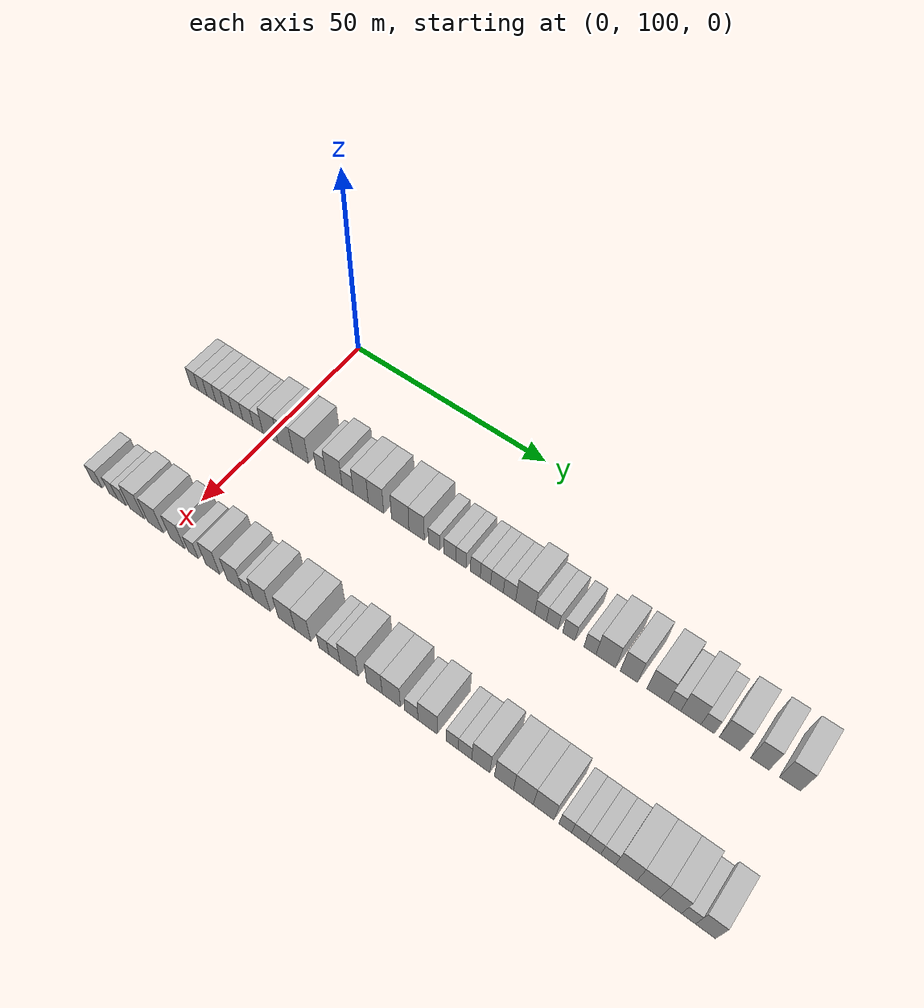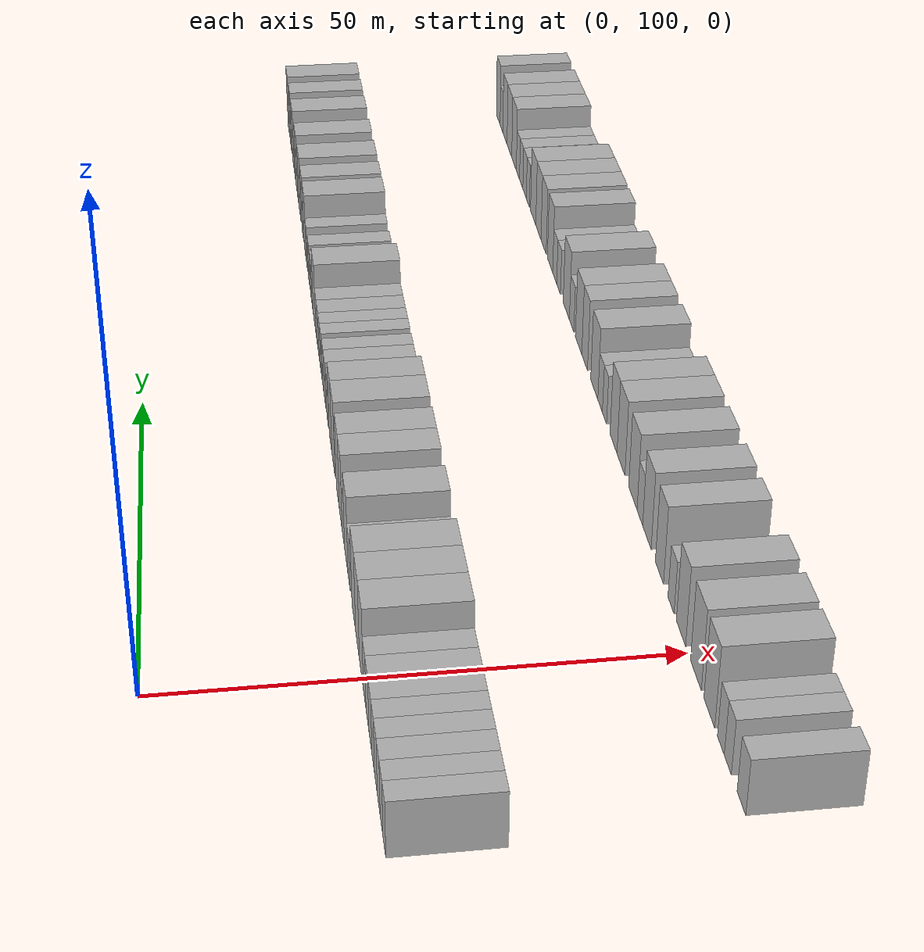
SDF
<sdf version="1.6">
 <world name="default">
  <model name="building_69">
   <static>1</static>
   <pose>25.0000 78.6879 0 0.000000 0.000000 0.000000</pose>
   <link name="link">
    <pose>0 0 3.00 0 0 0</pose>
    <collision name="collision"><geometry><box><size>10.0000 2.4779 6.0000</size></box></geometry></collision>
    <visual name="visual">
     <cast_shadows>0</cast_shadows>
     <geometry><box><size>10.0000 2.4779 6.0000</size></box></geometry>
     <material>
      <script>
       <uri>model://HANNAS_wall/materials/scripts</uri>
       <uri>model://HANNAS_wall/materials/textures</uri>
       <name>vrc/HANNAS_wall</name>
      </script>
     </material>
    </visual>
   </link>
  </model>
  <model name="building_70">
   <static>1</static>
   <pose>25.0000 81.1449 0 0.000000 0.000000 0.000000</pose>
   <link name="link">
    <pose>0 0 3.00 0 0 0</pose>
    <collision name="collision"><geometry><box><size>10.0000 2.4361 6.0000</size></box></geometry></collision>
    <visual name="visual">
     <cast_shadows>0</cast_shadows>
     <geometry><box><size>10.0000 2.4361 6.0000</size></box></geometry>
     <material>
      <script>
       <uri>model://HANNAS_wall/materials/scripts</uri>
       <uri>model://HANNAS_wall/materials/textures</uri>
       <name>vrc/HANNAS_wall</name>
      </script>
     </material>
    </visual>
   </link>
  </model>
  <model name="building_71">
   <static>1</static>
   <pose>25.0000 83.6868 0 0.000000 0.000000 0.000000</pose>
   <link name="link">
    <pose>0 0 3.00 0 0 0</pose>
    <collision name="collision"><geometry><box><size>10.0000 2.6477 6.0000</size></box></geometry></collision>
    <visual name="visual">
     <cast_shadows>0</cast_shadows>
     <geometry><box><size>10.0000 2.6477 6.0000</size></box></geometry>
     <material>
      <script>
       <uri>model://HANNAS_wall/materials/scripts</uri>
       <uri>model://HANNAS_wall/materials/textures</uri>
       <name>vrc/HANNAS_wall</name>
      </script>
     </material>
    </visual>
   </link>
  </model>
  <model name="building_72">
   <static>1</static>
   <pose>25.0000 86.2719 0 0.000000 0.000000 0.000000</pose>
   <link name="link">
    <pose>0 0 3.00 0 0 0</pose>
    <collision name="collision"><geometry><box><size>10.0000 2.5225 6.0000</size></box></geometry></collision>
    <visual name="visual">
     <cast_shadows>0</cast_shadows>
     <geometry><box><size>10.0000 2.5225 6.0000</size></box></geometry>
     <material>
      <script>
       <uri>model://HANNAS_wall/materials/scripts</uri>
       <uri>model://HANNAS_wall/materials/textures</uri>
       <name>vrc/HANNAS_wall</name>
      </script>
     </material>
    </visual>
   </link>
  </model>
  <model name="building_73">
   <static>1</static>
   <pose>25.0000 88.7493 0 0.000000 0.000000 0.000000</pose>
   <link name="link">
    <pose>0 0 3.00 0 0 0</pose>
    <collision name="collision"><geometry><box><size>10.0000 2.4323 6.0000</size></box></geometry></collision>
    <visual name="visual">
     <cast_shadows>0</cast_shadows>
     <geometry><box><size>10.0000 2.4323 6.0000</size></box></geometry>
     <material>
      <script>
       <uri>model://HANNAS_wall/materials/scripts</uri>
       <uri>model://HANNAS_wall/materials/textures</uri>
       <name>vrc/HANNAS_wall</name>
      </script>
     </material>
    </visual>
   </link>
  </model>
  <model name="building_74">
   <static>1</static>
   <pose>25.0000 91.3941 0 0.000000 0.000000 0.000000</pose>
   <link name="link">
    <pose>0 0 3.00 0 0 0</pose>
    <collision name="collision"><geometry><box><size>10.0000 2.8573 6.0000</size></box></geometry></collision>
    <visual name="visual">
     <cast_shadows>0</cast_shadows>
     <geometry><box><size>10.0000 2.8573 6.0000</size></box></geometry>
     <material>
      <script>
       <uri>model://HANNAS_wall/materials/scripts</uri>
       <uri>model://HANNAS_wall/materials/textures</uri>
       <name>vrc/HANNAS_wall</name>
      </script>
     </material>
    </visual>
   </link>
  </model>
  <model name="building_75">
   <static>1</static>
   <pose>25.0000 94.3210 0 0.000000 0.000000 0.000000</pose>
   <link name="link">
    <pose>0 0 3.00 0 0 0</pose>
    <collision name="collision"><geometry><box><size>10.0000 2.9966 6.0000</size></box></geometry></collision>
    <visual name="visual">
     <cast_shadows>0</cast_shadows>
     <geometry><box><size>10.0000 2.9966 6.0000</size></box></geometry>
     <material>
      <script>
       <uri>model://HANNAS_wall/materials/scripts</uri>
       <uri>model://HANNAS_wall/materials/textures</uri>
       <name>vrc/HANNAS_wall</name>
      </script>
     </material>
    </visual>
   </link>
  </model>
  <model name="building_76">
   <static>1</static>
   <pose>25.0000 97.1688 0 0.000000 0.000000 0.000000</pose>
   <link name="link">
    <pose>0 0 3.00 0 0 0</pose>
    <collision name="collision"><geometry><box><size>10.0000 2.6990 6.0000</size></box></geometry></collision>
    <visual name="visual">
     <cast_shadows>0</cast_shadows>
     <geometry><box><size>10.0000 2.6990 6.0000</size></box></geometry>
     <material>
      <script>
       <uri>model://HANNAS_wall/materials/scripts</uri>
       <uri>model://HANNAS_wall/materials/textures</uri>
       <name>vrc/HANNAS_wall</name>
      </script>
     </material>
    </visual>
   </link>
  </model>
  <model name="building_77">
   <static>1</static>
   <pose>25.0000 100.6494 0 0.000000 0.000000 0.000000</pose>
   <link name="link">
    <pose>0 0 4.50 0 0 0</pose>
    <collision name="collision"><geometry><box><size>10.0000 4.2621 9.0000</size></box></geometry></collision>
    <visual name="visual">
     <cast_shadows>0</cast_shadows>
     <geometry><box><size>10.0000 4.2621 9.0000</size></box></geometry>
     <material>
      <script>
       <uri>model://HANNAS_wall/materials/scripts</uri>
       <uri>model://HANNAS_wall/materials/textures</uri>
       <name>vrc/HANNAS_wall</name>
      </script>
     </material>
    </visual>
   </link>
  </model>
  <model name="building_78">
   <static>1</static>
   <pose>25.0000 104.8678 0 0.000000 0.000000 0.000000</pose>
   <link name="link">
    <pose>0 0 4.50 0 0 0</pose>
    <collision name="collision"><geometry><box><size>10.0000 4.1746 9.0000</size></box></geometry></collision>
    <visual name="visual">
     <cast_shadows>0</cast_shadows>
     <geometry><box><size>10.0000 4.1746 9.0000</size></box></geometry>
     <material>
      <script>
       <uri>model://HANNAS_wall/materials/scripts</uri>
       <uri>model://HANNAS_wall/materials/textures</uri>
       <name>vrc/HANNAS_wall</name>
      </script>
     </material>
    </visual>
   </link>
  </model>
  <model name="building_79">
   <static>1</static>
   <pose>25.0000 109.0626 0 0.000000 0.000000 0.000000</pose>
   <link name="link">
    <pose>0 0 4.50 0 0 0</pose>
    <collision name="collision"><geometry><box><size>10.0000 4.2151 9.0000</size></box></geometry></collision>
    <visual name="visual">
     <cast_shadows>0</cast_shadows>
     <geometry><box><size>10.0000 4.2151 9.0000</size></box></geometry>
     <material>
      <script>
       <uri>model://HANNAS_wall/materials/scripts</uri>
       <uri>model://HANNAS_wall/materials/textures</uri>
       <name>vrc/HANNAS_wall</name>
      </script>
     </material>
    </visual>
   </link>
  </model>
  <model name="building_80">
   <static>1</static>
   <pose>25.0000 114.5072 0 0.000000 0.000000 0.000000</pose>
   <link name="link">
    <pose>0 0 3.00 0 0 0</pose>
    <collision name="collision"><geometry><box><size>10.0000 2.6740 6.0000</size></box></geometry></collision>
    <visual name="visual">
     <cast_shadows>0</cast_shadows>
     <geometry><box><size>10.0000 2.6740 6.0000</size></box></geometry>
     <material>
      <script>
       <uri>model://HANNAS_wall/materials/scripts</uri>
       <uri>model://HANNAS_wall/materials/textures</uri>
       <name>vrc/HANNAS_wall</name>
      </script>
     </material>
    </visual>
   </link>
  </model>
  <model name="building_81">
   <static>1</static>
   <pose>25.0000 118.0211 0 0.000000 0.000000 0.000000</pose>
   <link name="link">
    <pose>0 0 4.50 0 0 0</pose>
    <collision name="collision"><geometry><box><size>10.0000 4.3538 9.0000</size></box></geometry></collision>
    <visual name="visual">
     <cast_shadows>0</cast_shadows>
     <geometry><box><size>10.0000 4.3538 9.0000</size></box></geometry>
     <material>
      <script>
       <uri>model://HANNAS_wall/materials/scripts</uri>
       <uri>model://HANNAS_wall/materials/textures</uri>
       <name>vrc/HANNAS_wall</name>
      </script>
     </material>
    </visual>
   </link>
  </model>
  <model name="building_82">
   <static>1</static>
   <pose>25.0000 121.6904 0 0.000000 0.000000 0.000000</pose>
   <link name="link">
    <pose>0 0 3.00 0 0 0</pose>
    <collision name="collision"><geometry><box><size>10.0000 2.9847 6.0000</size></box></geometry></collision>
    <visual name="visual">
     <cast_shadows>0</cast_shadows>
     <geometry><box><size>10.0000 2.9847 6.0000</size></box></geometry>
     <material>
      <script>
       <uri>model://HANNAS_wall/materials/scripts</uri>
       <uri>model://HANNAS_wall/materials/textures</uri>
       <name>vrc/HANNAS_wall</name>
      </script>
     </material>
    </visual>
   </link>
  </model>
  <model name="building_83">
   <static>1</static>
   <pose>25.0000 125.1271 0 0.000000 0.000000 0.000000</pose>
   <link name="link">
    <pose>0 0 4.50 0 0 0</pose>
    <collision name="collision"><geometry><box><size>10.0000 3.8887 9.0000</size></box></geometry></collision>
    <visual name="visual">
     <cast_shadows>0</cast_shadows>
     <geometry><box><size>10.0000 3.8887 9.0000</size></box></geometry>
     <material>
      <script>
       <uri>model://HANNAS_wall/materials/scripts</uri>
       <uri>model://HANNAS_wall/materials/textures</uri>
       <name>vrc/HANNAS_wall</name>
      </script>
     </material>
    </visual>
   </link>
  </model>
  <model name="building_84">
   <static>1</static>
   <pose>25.0000 129.0523 0 0.000000 0.000000 0.000000</pose>
   <link name="link">
    <pose>0 0 4.50 0 0 0</pose>
    <collision name="collision"><geometry><box><size>10.0000 3.9617 9.0000</size></box></geometry></collision>
    <visual name="visual">
     <cast_shadows>0</cast_shadows>
     <geometry><box><size>10.0000 3.9617 9.0000</size></box></geometry>
     <material>
      <script>
       <uri>model://HANNAS_wall/materials/scripts</uri>
       <uri>model://HANNAS_wall/materials/textures</uri>
       <name>vrc/HANNAS_wall</name>
      </script>
     </material>
    </visual>
   </link>
  </model>
  <model name="building_85">
   <static>1</static>
   <pose>25.0000 135.2453 0 0.000000 0.000000 0.000000</pose>
   <link name="link">
    <pose>0 0 4.50 0 0 0</pose>
    <collision name="collision"><geometry><box><size>10.0000 4.4245 9.0000</size></box></geometry></collision>
    <visual name="visual">
     <cast_shadows>0</cast_shadows>
     <geometry><box><size>10.0000 4.4245 9.0000</size></box></geometry>
     <material>
      <script>
       <uri>model://HANNAS_wall/materials/scripts</uri>
       <uri>model://HANNAS_wall/materials/textures</uri>
       <name>vrc/HANNAS_wall</name>
      </script>
     </material>
    </visual>
   </link>
  </model>
  <model name="building_86">
   <static>1</static>
   <pose>25.0000 139.3725 0 0.000000 0.000000 0.000000</pose>
   <link name="link">
    <pose>0 0 4.50 0 0 0</pose>
    <collision name="collision"><geometry><box><size>10.0000 3.8299 9.0000</size></box></geometry></collision>
    <visual name="visual">
     <cast_shadows>0</cast_shadows>
     <geometry><box><size>10.0000 3.8299 9.0000</size></box></geometry>
     <material>
      <script>
       <uri>model://HANNAS_wall/materials/scripts</uri>
       <uri>model://HANNAS_wall/materials/textures</uri>
       <name>vrc/HANNAS_wall</name>
      </script>
     </material>
    </visual>
   </link>
  </model>
  <model name="building_87">
   <static>1</static>
   <pose>25.0000 143.6843 0 0.000000 0.000000 0.000000</pose>
   <link name="link">
    <pose>0 0 3.00 0 0 0</pose>
    <collision name="collision"><geometry><box><size>10.0000 2.7937 6.0000</size></box></geometry></collision>
    <visual name="visual">
     <cast_shadows>0</cast_shadows>
     <geometry><box><size>10.0000 2.7937 6.0000</size></box></geometry>
     <material>
      <script>
       <uri>model://HANNAS_wall/materials/scripts</uri>
       <uri>model://HANNAS_wall/materials/textures</uri>
       <name>vrc/HANNAS_wall</name>
      </script>
     </material>
    </visual>
   </link>
  </model>
  <model name="building_88">
   <static>1</static>
   <pose>25.0000 147.5683 0 0.000000 0.000000 0.000000</pose>
   <link name="link">
    <pose>0 0 3.00 0 0 0</pose>
    <collision name="collision"><geometry><box><size>10.0000 2.9743 6.0000</size></box></geometry></collision>
    <visual name="visual">
     <cast_shadows>0</cast_shadows>
     <geometry><box><size>10.0000 2.9743 6.0000</size></box></geometry>
     <material>
      <script>
       <uri>model://HANNAS_wall/materials/scripts</uri>
       <uri>model://HANNAS_wall/materials/textures</uri>
       <name>vrc/HANNAS_wall</name>
      </script>
     </material>
    </visual>
   </link>
  </model>
  <model name="building_89">
   <static>1</static>
   <pose>25.0000 150.2918 0 0.000000 0.000000 0.000000</pose>
   <link name="link">
    <pose>0 0 3.00 0 0 0</pose>
    <collision name="collision"><geometry><box><size>10.0000 2.4726 6.0000</size></box></geometry></collision>
    <visual name="visual">
     <cast_shadows>0</cast_shadows>
     <geometry><box><size>10.0000 2.4726 6.0000</size></box></geometry>
     <material>
      <script>
       <uri>model://HANNAS_wall/materials/scripts</uri>
       <uri>model://HANNAS_wall/materials/textures</uri>
       <name>vrc/HANNAS_wall</name>
      </script>
     </material>
    </visual>
   </link>
  </model>
  <model name="building_90">
   <static>1</static>
   <pose>25.0000 153.7331 0 0.000000 0.000000 0.000000</pose>
   <link name="link">
    <pose>0 0 3.00 0 0 0</pose>
    <collision name="collision"><geometry><box><size>10.0000 2.4100 6.0000</size></box></geometry></collision>
    <visual name="visual">
     <cast_shadows>0</cast_shadows>
     <geometry><box><size>10.0000 2.4100 6.0000</size></box></geometry>
     <material>
      <script>
       <uri>model://HANNAS_wall/materials/scripts</uri>
       <uri>model://HANNAS_wall/materials/textures</uri>
       <name>vrc/HANNAS_wall</name>
      </script>
     </material>
    </visual>
   </link>
  </model>
  <model name="building_91">
   <static>1</static>
   <pose>25.0000 156.1732 0 0.000000 0.000000 0.000000</pose>
   <link name="link">
    <pose>0 0 3.00 0 0 0</pose>
    <collision name="collision"><geometry><box><size>10.0000 2.4704 6.0000</size></box></geometry></collision>
    <visual name="visual">
     <cast_shadows>0</cast_shadows>
     <geometry><box><size>10.0000 2.4704 6.0000</size></box></geometry>
     <material>
      <script>
       <uri>model://HANNAS_wall/materials/scripts</uri>
       <uri>model://HANNAS_wall/materials/textures</uri>
       <name>vrc/HANNAS_wall</name>
      </script>
     </material>
    </visual>
   </link>
  </model>
  <model name="building_92">
   <static>1</static>
   <pose>25.0000 158.9029 0 0.000000 0.000000 0.000000</pose>
   <link name="link">
    <pose>0 0 3.00 0 0 0</pose>
    <collision name="collision"><geometry><box><size>10.0000 2.9889 6.0000</size></box></geometry></collision>
    <visual name="visual">
     <cast_shadows>0</cast_shadows>
     <geometry><box><size>10.0000 2.9889 6.0000</size></box></geometry>
     <material>
      <script>
       <uri>model://HANNAS_wall/materials/scripts</uri>
       <uri>model://HANNAS_wall/materials/textures</uri>
       <name>vrc/HANNAS_wall</name>
      </script>
     </material>
    </visual>
   </link>
  </model>
  <model name="building_93">
   <static>1</static>
   <pose>25.0000 161.8465 0 0.000000 0.000000 0.000000</pose>
   <link name="link">
    <pose>0 0 3.00 0 0 0</pose>
    <collision name="collision"><geometry><box><size>10.0000 2.8983 6.0000</size></box></geometry></collision>
    <visual name="visual">
     <cast_shadows>0</cast_shadows>
     <geometry><box><size>10.0000 2.8983 6.0000</size></box></geometry>
     <material>
      <script>
       <uri>model://HANNAS_wall/materials/scripts</uri>
       <uri>model://HANNAS_wall/materials/textures</uri>
       <name>vrc/HANNAS_wall</name>
      </script>
     </material>
    </visual>
   </link>
  </model>
  <model name="building_94">
   <static>1</static>
   <pose>25.0000 165.4857 0 0.000000 0.000000 0.000000</pose>
   <link name="link">
    <pose>0 0 4.50 0 0 0</pose>
    <collision name="collision"><geometry><box><size>10.0000 4.3802 9.0000</size></box></geometry></collision>
    <visual name="visual">
     <cast_shadows>0</cast_shadows>
     <geometry><box><size>10.0000 4.3802 9.0000</size></box></geometry>
     <material>
      <script>
       <uri>model://HANNAS_wall/materials/scripts</uri>
       <uri>model://HANNAS_wall/materials/textures</uri>
       <name>vrc/HANNAS_wall</name>
      </script>
     </material>
    </visual>
   </link>
  </model>
  <model name="building_95">
   <static>1</static>
   <pose>25.0000 169.0139 0 0.000000 0.000000 0.000000</pose>
   <link name="link">
    <pose>0 0 3.00 0 0 0</pose>
    <collision name="collision"><geometry><box><size>10.0000 2.6763 6.0000</size></box></geometry></collision>
    <visual name="visual">
     <cast_shadows>0</cast_shadows>
     <geometry><box><size>10.0000 2.6763 6.0000</size></box></geometry>
     <material>
      <script>
       <uri>model://HANNAS_wall/materials/scripts</uri>
       <uri>model://HANNAS_wall/materials/textures</uri>
       <name>vrc/HANNAS_wall</name>
      </script>
     </material>
    </visual>
   </link>
  </model>
  <model name="building_96">
   <static>1</static>
   <pose>25.0000 171.7086 0 0.000000 0.000000 0.000000</pose>
   <link name="link">
    <pose>0 0 3.00 0 0 0</pose>
    <collision name="collision"><geometry><box><size>10.0000 2.7130 6.0000</size></box></geometry></collision>
    <visual name="visual">
     <cast_shadows>0</cast_shadows>
     <geometry><box><size>10.0000 2.7130 6.0000</size></box></geometry>
     <material>
      <script>
       <uri>model://HANNAS_wall/materials/scripts</uri>
       <uri>model://HANNAS_wall/materials/textures</uri>
       <name>vrc/HANNAS_wall</name>
      </script>
     </material>
    </visual>
   </link>
  </model>
  <model name="building_97">
   <static>1</static>
   <pose>25.0000 175.4505 0 0.000000 0.000000 0.000000</pose>
   <link name="link">
    <pose>0 0 3.00 0 0 0</pose>
    <collision name="collision"><geometry><box><size>10.0000 2.7708 6.0000</size></box></geometry></collision>
    <visual name="visual">
     <cast_shadows>0</cast_shadows>
     <geometry><box><size>10.0000 2.7708 6.0000</size></box></geometry>
     <material>
      <script>
       <uri>model://HANNAS_wall/materials/scripts</uri>
       <uri>model://HANNAS_wall/materials/textures</uri>
       <name>vrc/HANNAS_wall</name>
      </script>
     </material>
    </visual>
   </link>
  </model>
  <model name="building_98">
   <static>1</static>
   <pose>25.0000 180.1701 0 0.000000 0.000000 0.000000</pose>
   <link name="link">
    <pose>0 0 3.00 0 0 0</pose>
    <collision name="collision"><geometry><box><size>10.0000 2.6682 6.0000</size></box></geometry></collision>
    <visual name="visual">
     <cast_shadows>0</cast_shadows>
     <geometry><box><size>10.0000 2.6682 6.0000</size></box></geometry>
     <material>
      <script>
       <uri>model://HANNAS_wall/materials/scripts</uri>
       <uri>model://HANNAS_wall/materials/textures</uri>
       <name>vrc/HANNAS_wall</name>
      </script>
     </material>
    </visual>
   </link>
  </model>
  <model name="building_99">
   <static>1</static>
   <pose>25.0000 183.6478 0 0.000000 0.000000 0.000000</pose>
   <link name="link">
    <pose>0 0 4.50 0 0 0</pose>
    <collision name="collision"><geometry><box><size>10.0000 4.2873 9.0000</size></box></geometry></collision>
    <visual name="visual">
     <cast_shadows>0</cast_shadows>
     <geometry><box><size>10.0000 4.2873 9.0000</size></box></geometry>
     <material>
      <script>
       <uri>model://HANNAS_wall/materials/scripts</uri>
       <uri>model://HANNAS_wall/materials/textures</uri>
       <name>vrc/HANNAS_wall</name>
      </script>
     </material>
    </visual>
   </link>
  </model>
  <model name="building_100">
   <static>1</static>
   <pose>25.0000 188.6490 0 0.000000 0.000000 0.000000</pose>
   <link name="link">
    <pose>0 0 4.50 0 0 0</pose>
    <collision name="collision"><geometry><box><size>10.0000 3.7152 9.0000</size></box></geometry></collision>
    <visual name="visual">
     <cast_shadows>0</cast_shadows>
     <geometry><box><size>10.0000 3.7152 9.0000</size></box></geometry>
     <material>
      <script>
       <uri>model://HANNAS_wall/materials/scripts</uri>
       <uri>model://HANNAS_wall/materials/textures</uri>
       <name>vrc/HANNAS_wall</name>
      </script>
     </material>
    </visual>
   </link>
  </model>
  <model name="building_101">
   <static>1</static>
   <pose>25.0000 194.7342 0 0.000000 0.000000 0.000000</pose>
   <link name="link">
    <pose>0 0 4.50 0 0 0</pose>
    <collision name="collision"><geometry><box><size>10.0000 4.4552 9.0000</size></box></geometry></collision>
    <visual name="visual">
     <cast_shadows>0</cast_shadows>
     <geometry><box><size>10.0000 4.4552 9.0000</size></box></geometry>
     <material>
      <script>
       <uri>model://HANNAS_wall/materials/scripts</uri>
       <uri>model://HANNAS_wall/materials/textures</uri>
       <name>vrc/HANNAS_wall</name>
      </script>
     </material>
    </visual>
   </link>
  </model>
  <model name="building_102">
   <static>1</static>
   <pose>25.0000 198.2845 0 0.000000 0.000000 0.000000</pose>
   <link name="link">
    <pose>0 0 3.00 0 0 0</pose>
    <collision name="collision"><geometry><box><size>10.0000 2.6454 6.0000</size></box></geometry></collision>
    <visual name="visual">
     <cast_shadows>0</cast_shadows>
     <geometry><box><size>10.0000 2.6454 6.0000</size></box></geometry>
     <material>
      <script>
       <uri>model://HANNAS_wall/materials/scripts</uri>
       <uri>model://HANNAS_wall/materials/textures</uri>
       <name>vrc/HANNAS_wall</name>
      </script>
     </material>
    </visual>
   </link>
  </model>
  <model name="building_103">
   <static>1</static>
   <pose>25.0000 201.6958 0 0.000000 0.000000 0.000000</pose>
   <link name="link">
    <pose>0 0 4.50 0 0 0</pose>
    <collision name="collision"><geometry><box><size>10.0000 4.1772 9.0000</size></box></geometry></collision>
    <visual name="visual">
     <cast_shadows>0</cast_shadows>
     <geometry><box><size>10.0000 4.1772 9.0000</size></box></geometry>
     <material>
      <script>
       <uri>model://HANNAS_wall/materials/scripts</uri>
       <uri>model://HANNAS_wall/materials/textures</uri>
       <name>vrc/HANNAS_wall</name>
      </script>
     </material>
    </visual>
   </link>
  </model>
  <model name="building_104">
   <static>1</static>
   <pose>25.0000 205.1505 0 0.000000 0.000000 0.000000</pose>
   <link name="link">
    <pose>0 0 3.00 0 0 0</pose>
    <collision name="collision"><geometry><box><size>10.0000 2.7322 6.0000</size></box></geometry></collision>
    <visual name="visual">
     <cast_shadows>0</cast_shadows>
     <geometry><box><size>10.0000 2.7322 6.0000</size></box></geometry>
     <material>
      <script>
       <uri>model://HANNAS_wall/materials/scripts</uri>
       <uri>model://HANNAS_wall/materials/textures</uri>
       <name>vrc/HANNAS_wall</name>
      </script>
     </material>
    </visual>
   </link>
  </model>
  <model name="building_105">
   <static>1</static>
   <pose>25.0000 209.6522 0 0.000000 0.000000 0.000000</pose>
   <link name="link">
    <pose>0 0 4.50 0 0 0</pose>
    <collision name="collision"><geometry><box><size>10.0000 4.2711 9.0000</size></box></geometry></collision>
    <visual name="visual">
     <cast_shadows>0</cast_shadows>
     <geometry><box><size>10.0000 4.2711 9.0000</size></box></geometry>
     <material>
      <script>
       <uri>model://HANNAS_wall/materials/scripts</uri>
       <uri>model://HANNAS_wall/materials/textures</uri>
       <name>vrc/HANNAS_wall</name>
      </script>
     </material>
    </visual>
   </link>
  </model>
  <model name="building_106">
   <static>1</static>
   <pose>25.0000 215.6043 0 0.000000 0.000000 0.000000</pose>
   <link name="link">
    <pose>0 0 4.50 0 0 0</pose>
    <collision name="collision"><geometry><box><size>10.0000 3.6331 9.0000</size></box></geometry></collision>
    <visual name="visual">
     <cast_shadows>0</cast_shadows>
     <geometry><box><size>10.0000 3.6331 9.0000</size></box></geometry>
     <material>
      <script>
       <uri>model://HANNAS_wall/materials/scripts</uri>
       <uri>model://HANNAS_wall/materials/textures</uri>
       <name>vrc/HANNAS_wall</name>
      </script>
     </material>
    </visual>
   </link>
  </model>
  <model name="building_107">
   <static>1</static>
   <pose>25.0000 221.4676 0 0.000000 0.000000 0.000000</pose>
   <link name="link">
    <pose>0 0 4.50 0 0 0</pose>
    <collision name="collision"><geometry><box><size>10.0000 4.0934 9.0000</size></box></geometry></collision>
    <visual name="visual">
     <cast_shadows>0</cast_shadows>
     <geometry><box><size>10.0000 4.0934 9.0000</size></box></geometry>
     <material>
      <script>
       <uri>model://HANNAS_wall/materials/scripts</uri>
       <uri>model://HANNAS_wall/materials/textures</uri>
       <name>vrc/HANNAS_wall</name>
      </script>
     </material>
    </visual>
   </link>
  </model>
  <model name="building_186">
   <static>1</static>
   <pose>55.0000 80.1616 0 0.000000 0.000000 0.000000</pose>
   <link name="link">
    <pose>0 0 3.00 0 0 0</pose>
    <collision name="collision"><geometry><box><size>10.0000 2.9261 6.0000</size></box></geometry></collision>
    <visual name="visual">
     <cast_shadows>0</cast_shadows>
     <geometry><box><size>10.0000 2.9261 6.0000</size></box></geometry>
     <material>
      <script>
       <uri>model://HANNAS_wall/materials/scripts</uri>
       <uri>model://HANNAS_wall/materials/textures</uri>
       <name>vrc/HANNAS_wall</name>
      </script>
     </material>
    </visual>
   </link>
  </model>
  <model name="building_187">
   <static>1</static>
   <pose>55.0000 84.8802 0 0.000000 0.000000 0.000000</pose>
   <link name="link">
    <pose>0 0 3.00 0 0 0</pose>
    <collision name="collision"><geometry><box><size>10.0000 2.5111 6.0000</size></box></geometry></collision>
    <visual name="visual">
     <cast_shadows>0</cast_shadows>
     <geometry><box><size>10.0000 2.5111 6.0000</size></box></geometry>
     <material>
      <script>
       <uri>model://HANNAS_wall/materials/scripts</uri>
       <uri>model://HANNAS_wall/materials/textures</uri>
       <name>vrc/HANNAS_wall</name>
      </script>
     </material>
    </visual>
   </link>
  </model>
  <model name="building_188">
   <static>1</static>
   <pose>55.0000 87.3745 0 0.000000 0.000000 0.000000</pose>
   <link name="link">
    <pose>0 0 3.00 0 0 0</pose>
    <collision name="collision"><geometry><box><size>10.0000 2.4774 6.0000</size></box></geometry></collision>
    <visual name="visual">
     <cast_shadows>0</cast_shadows>
     <geometry><box><size>10.0000 2.4774 6.0000</size></box></geometry>
     <material>
      <script>
       <uri>model://HANNAS_wall/materials/scripts</uri>
       <uri>model://HANNAS_wall/materials/textures</uri>
       <name>vrc/HANNAS_wall</name>
      </script>
     </material>
    </visual>
   </link>
  </model>
  <model name="building_189">
   <static>1</static>
   <pose>55.0000 91.6677 0 0.000000 0.000000 0.000000</pose>
   <link name="link">
    <pose>0 0 4.50 0 0 0</pose>
    <collision name="collision"><geometry><box><size>10.0000 4.1089 9.0000</size></box></geometry></collision>
    <visual name="visual">
     <cast_shadows>0</cast_shadows>
     <geometry><box><size>10.0000 4.1089 9.0000</size></box></geometry>
     <material>
      <script>
       <uri>model://HANNAS_wall/materials/scripts</uri>
       <uri>model://HANNAS_wall/materials/textures</uri>
       <name>vrc/HANNAS_wall</name>
      </script>
     </material>
    </visual>
   </link>
  </model>
  <model name="building_190">
   <static>1</static>
   <pose>55.0000 96.8815 0 0.000000 0.000000 0.000000</pose>
   <link name="link">
    <pose>0 0 4.50 0 0 0</pose>
    <collision name="collision"><geometry><box><size>10.0000 4.3187 9.0000</size></box></geometry></collision>
    <visual name="visual">
     <cast_shadows>0</cast_shadows>
     <geometry><box><size>10.0000 4.3187 9.0000</size></box></geometry>
     <material>
      <script>
       <uri>model://HANNAS_wall/materials/scripts</uri>
       <uri>model://HANNAS_wall/materials/textures</uri>
       <name>vrc/HANNAS_wall</name>
      </script>
     </material>
    </visual>
   </link>
  </model>
  <model name="building_191">
   <static>1</static>
   <pose>55.0000 102.9817 0 0.000000 0.000000 0.000000</pose>
   <link name="link">
    <pose>0 0 4.50 0 0 0</pose>
    <collision name="collision"><geometry><box><size>10.0000 3.8818 9.0000</size></box></geometry></collision>
    <visual name="visual">
     <cast_shadows>0</cast_shadows>
     <geometry><box><size>10.0000 3.8818 9.0000</size></box></geometry>
     <material>
      <script>
       <uri>model://HANNAS_wall/materials/scripts</uri>
       <uri>model://HANNAS_wall/materials/textures</uri>
       <name>vrc/HANNAS_wall</name>
      </script>
     </material>
    </visual>
   </link>
  </model>
  <model name="building_192">
   <static>1</static>
   <pose>55.0000 107.2572 0 0.000000 0.000000 0.000000</pose>
   <link name="link">
    <pose>0 0 3.00 0 0 0</pose>
    <collision name="collision"><geometry><box><size>10.0000 2.6694 6.0000</size></box></geometry></collision>
    <visual name="visual">
     <cast_shadows>0</cast_shadows>
     <geometry><box><size>10.0000 2.6694 6.0000</size></box></geometry>
     <material>
      <script>
       <uri>model://HANNAS_wall/materials/scripts</uri>
       <uri>model://HANNAS_wall/materials/textures</uri>
       <name>vrc/HANNAS_wall</name>
      </script>
     </material>
    </visual>
   </link>
  </model>
  <model name="building_193">
   <static>1</static>
   <pose>55.0000 112.4577 0 0.000000 0.000000 0.000000</pose>
   <link name="link">
    <pose>0 0 4.50 0 0 0</pose>
    <collision name="collision"><geometry><box><size>10.0000 3.7316 9.0000</size></box></geometry></collision>
    <visual name="visual">
     <cast_shadows>0</cast_shadows>
     <geometry><box><size>10.0000 3.7316 9.0000</size></box></geometry>
     <material>
      <script>
       <uri>model://HANNAS_wall/materials/scripts</uri>
       <uri>model://HANNAS_wall/materials/textures</uri>
       <name>vrc/HANNAS_wall</name>
      </script>
     </material>
    </visual>
   </link>
  </model>
  <model name="building_194">
   <static>1</static>
   <pose>55.0000 118.3690 0 0.000000 0.000000 0.000000</pose>
   <link name="link">
    <pose>0 0 4.50 0 0 0</pose>
    <collision name="collision"><geometry><box><size>10.0000 4.0909 9.0000</size></box></geometry></collision>
    <visual name="visual">
     <cast_shadows>0</cast_shadows>
     <geometry><box><size>10.0000 4.0909 9.0000</size></box></geometry>
     <material>
      <script>
       <uri>model://HANNAS_wall/materials/scripts</uri>
       <uri>model://HANNAS_wall/materials/textures</uri>
       <name>vrc/HANNAS_wall</name>
      </script>
     </material>
    </visual>
   </link>
  </model>
  <model name="building_195">
   <static>1</static>
   <pose>55.0000 121.8026 0 0.000000 0.000000 0.000000</pose>
   <link name="link">
    <pose>0 0 3.00 0 0 0</pose>
    <collision name="collision"><geometry><box><size>10.0000 2.7765 6.0000</size></box></geometry></collision>
    <visual name="visual">
     <cast_shadows>0</cast_shadows>
     <geometry><box><size>10.0000 2.7765 6.0000</size></box></geometry>
     <material>
      <script>
       <uri>model://HANNAS_wall/materials/scripts</uri>
       <uri>model://HANNAS_wall/materials/textures</uri>
       <name>vrc/HANNAS_wall</name>
      </script>
     </material>
    </visual>
   </link>
  </model>
  <model name="building_196">
   <static>1</static>
   <pose>55.0000 125.3318 0 0.000000 0.000000 0.000000</pose>
   <link name="link">
    <pose>0 0 4.50 0 0 0</pose>
    <collision name="collision"><geometry><box><size>10.0000 4.2819 9.0000</size></box></geometry></collision>
    <visual name="visual">
     <cast_shadows>0</cast_shadows>
     <geometry><box><size>10.0000 4.2819 9.0000</size></box></geometry>
     <material>
      <script>
       <uri>model://HANNAS_wall/materials/scripts</uri>
       <uri>model://HANNAS_wall/materials/textures</uri>
       <name>vrc/HANNAS_wall</name>
      </script>
     </material>
    </visual>
   </link>
  </model>
  <model name="building_197">
   <static>1</static>
   <pose>55.0000 131.5989 0 0.000000 0.000000 0.000000</pose>
   <link name="link">
    <pose>0 0 4.50 0 0 0</pose>
    <collision name="collision"><geometry><box><size>10.0000 4.2524 9.0000</size></box></geometry></collision>
    <visual name="visual">
     <cast_shadows>0</cast_shadows>
     <geometry><box><size>10.0000 4.2524 9.0000</size></box></geometry>
     <material>
      <script>
       <uri>model://HANNAS_wall/materials/scripts</uri>
       <uri>model://HANNAS_wall/materials/textures</uri>
       <name>vrc/HANNAS_wall</name>
      </script>
     </material>
    </visual>
   </link>
  </model>
  <model name="building_198">
   <static>1</static>
   <pose>55.0000 135.6648 0 0.000000 0.000000 0.000000</pose>
   <link name="link">
    <pose>0 0 4.50 0 0 0</pose>
    <collision name="collision"><geometry><box><size>10.0000 3.8793 9.0000</size></box></geometry></collision>
    <visual name="visual">
     <cast_shadows>0</cast_shadows>
     <geometry><box><size>10.0000 3.8793 9.0000</size></box></geometry>
     <material>
      <script>
       <uri>model://HANNAS_wall/materials/scripts</uri>
       <uri>model://HANNAS_wall/materials/textures</uri>
       <name>vrc/HANNAS_wall</name>
      </script>
     </material>
    </visual>
   </link>
  </model>
  <model name="building_199">
   <static>1</static>
   <pose>55.0000 140.8181 0 0.000000 0.000000 0.000000</pose>
   <link name="link">
    <pose>0 0 3.00 0 0 0</pose>
    <collision name="collision"><geometry><box><size>10.0000 2.4273 6.0000</size></box></geometry></collision>
    <visual name="visual">
     <cast_shadows>0</cast_shadows>
     <geometry><box><size>10.0000 2.4273 6.0000</size></box></geometry>
     <material>
      <script>
       <uri>model://HANNAS_wall/materials/scripts</uri>
       <uri>model://HANNAS_wall/materials/textures</uri>
       <name>vrc/HANNAS_wall</name>
      </script>
     </material>
    </visual>
   </link>
  </model>
  <model name="building_200">
   <static>1</static>
   <pose>55.0000 143.3656 0 0.000000 0.000000 0.000000</pose>
   <link name="link">
    <pose>0 0 3.00 0 0 0</pose>
    <collision name="collision"><geometry><box><size>10.0000 2.6678 6.0000</size></box></geometry></collision>
    <visual name="visual">
     <cast_shadows>0</cast_shadows>
     <geometry><box><size>10.0000 2.6678 6.0000</size></box></geometry>
     <material>
      <script>
       <uri>model://HANNAS_wall/materials/scripts</uri>
       <uri>model://HANNAS_wall/materials/textures</uri>
       <name>vrc/HANNAS_wall</name>
      </script>
     </material>
    </visual>
   </link>
  </model>
  <model name="building_201">
   <static>1</static>
   <pose>55.0000 146.8724 0 0.000000 0.000000 0.000000</pose>
   <link name="link">
    <pose>0 0 4.50 0 0 0</pose>
    <collision name="collision"><geometry><box><size>10.0000 4.3457 9.0000</size></box></geometry></collision>
    <visual name="visual">
     <cast_shadows>0</cast_shadows>
     <geometry><box><size>10.0000 4.3457 9.0000</size></box></geometry>
     <material>
      <script>
       <uri>model://HANNAS_wall/materials/scripts</uri>
       <uri>model://HANNAS_wall/materials/textures</uri>
       <name>vrc/HANNAS_wall</name>
      </script>
     </material>
    </visual>
   </link>
  </model>
  <model name="building_202">
   <static>1</static>
   <pose>55.0000 152.8629 0 0.000000 0.000000 0.000000</pose>
   <link name="link">
    <pose>0 0 4.50 0 0 0</pose>
    <collision name="collision"><geometry><box><size>10.0000 3.6353 9.0000</size></box></geometry></collision>
    <visual name="visual">
     <cast_shadows>0</cast_shadows>
     <geometry><box><size>10.0000 3.6353 9.0000</size></box></geometry>
     <material>
      <script>
       <uri>model://HANNAS_wall/materials/scripts</uri>
       <uri>model://HANNAS_wall/materials/textures</uri>
       <name>vrc/HANNAS_wall</name>
      </script>
     </material>
    </visual>
   </link>
  </model>
  <model name="building_203">
   <static>1</static>
   <pose>55.0000 156.7798 0 0.000000 0.000000 0.000000</pose>
   <link name="link">
    <pose>0 0 4.50 0 0 0</pose>
    <collision name="collision"><geometry><box><size>10.0000 4.1986 9.0000</size></box></geometry></collision>
    <visual name="visual">
     <cast_shadows>0</cast_shadows>
     <geometry><box><size>10.0000 4.1986 9.0000</size></box></geometry>
     <material>
      <script>
       <uri>model://HANNAS_wall/materials/scripts</uri>
       <uri>model://HANNAS_wall/materials/textures</uri>
       <name>vrc/HANNAS_wall</name>
      </script>
     </material>
    </visual>
   </link>
  </model>
  <model name="building_204">
   <static>1</static>
   <pose>55.0000 161.3756 0 0.000000 0.000000 0.000000</pose>
   <link name="link">
    <pose>0 0 3.00 0 0 0</pose>
    <collision name="collision"><geometry><box><size>10.0000 2.9930 6.0000</size></box></geometry></collision>
    <visual name="visual">
     <cast_shadows>0</cast_shadows>
     <geometry><box><size>10.0000 2.9930 6.0000</size></box></geometry>
     <material>
      <script>
       <uri>model://HANNAS_wall/materials/scripts</uri>
       <uri>model://HANNAS_wall/materials/textures</uri>
       <name>vrc/HANNAS_wall</name>
      </script>
     </material>
    </visual>
   </link>
  </model>
  <model name="building_205">
   <static>1</static>
   <pose>55.0000 165.0200 0 0.000000 0.000000 0.000000</pose>
   <link name="link">
    <pose>0 0 4.50 0 0 0</pose>
    <collision name="collision"><geometry><box><size>10.0000 4.2959 9.0000</size></box></geometry></collision>
    <visual name="visual">
     <cast_shadows>0</cast_shadows>
     <geometry><box><size>10.0000 4.2959 9.0000</size></box></geometry>
     <material>
      <script>
       <uri>model://HANNAS_wall/materials/scripts</uri>
       <uri>model://HANNAS_wall/materials/textures</uri>
       <name>vrc/HANNAS_wall</name>
      </script>
     </material>
    </visual>
   </link>
  </model>
  <model name="building_206">
   <static>1</static>
   <pose>55.0000 170.5106 0 0.000000 0.000000 0.000000</pose>
   <link name="link">
    <pose>0 0 3.00 0 0 0</pose>
    <collision name="collision"><geometry><box><size>10.0000 2.6854 6.0000</size></box></geometry></collision>
    <visual name="visual">
     <cast_shadows>0</cast_shadows>
     <geometry><box><size>10.0000 2.6854 6.0000</size></box></geometry>
     <material>
      <script>
       <uri>model://HANNAS_wall/materials/scripts</uri>
       <uri>model://HANNAS_wall/materials/textures</uri>
       <name>vrc/HANNAS_wall</name>
      </script>
     </material>
    </visual>
   </link>
  </model>
  <model name="building_207">
   <static>1</static>
   <pose>55.0000 173.3299 0 0.000000 0.000000 0.000000</pose>
   <link name="link">
    <pose>0 0 3.00 0 0 0</pose>
    <collision name="collision"><geometry><box><size>10.0000 2.9532 6.0000</size></box></geometry></collision>
    <visual name="visual">
     <cast_shadows>0</cast_shadows>
     <geometry><box><size>10.0000 2.9532 6.0000</size></box></geometry>
     <material>
      <script>
       <uri>model://HANNAS_wall/materials/scripts</uri>
       <uri>model://HANNAS_wall/materials/textures</uri>
       <name>vrc/HANNAS_wall</name>
      </script>
     </material>
    </visual>
   </link>
  </model>
  <model name="building_208">
   <static>1</static>
   <pose>55.0000 176.7645 0 0.000000 0.000000 0.000000</pose>
   <link name="link">
    <pose>0 0 4.50 0 0 0</pose>
    <collision name="collision"><geometry><box><size>10.0000 3.9160 9.0000</size></box></geometry></collision>
    <visual name="visual">
     <cast_shadows>0</cast_shadows>
     <geometry><box><size>10.0000 3.9160 9.0000</size></box></geometry>
     <material>
      <script>
       <uri>model://HANNAS_wall/materials/scripts</uri>
       <uri>model://HANNAS_wall/materials/textures</uri>
       <name>vrc/HANNAS_wall</name>
      </script>
     </material>
    </visual>
   </link>
  </model>
  <model name="building_209">
   <static>1</static>
   <pose>55.0000 181.7361 0 0.000000 0.000000 0.000000</pose>
   <link name="link">
    <pose>0 0 4.50 0 0 0</pose>
    <collision name="collision"><geometry><box><size>10.0000 4.0271 9.0000</size></box></geometry></collision>
    <visual name="visual">
     <cast_shadows>0</cast_shadows>
     <geometry><box><size>10.0000 4.0271 9.0000</size></box></geometry>
     <material>
      <script>
       <uri>model://HANNAS_wall/materials/scripts</uri>
       <uri>model://HANNAS_wall/materials/textures</uri>
       <name>vrc/HANNAS_wall</name>
      </script>
     </material>
    </visual>
   </link>
  </model>
  <model name="building_210">
   <static>1</static>
   <pose>55.0000 185.8395 0 0.000000 0.000000 0.000000</pose>
   <link name="link">
    <pose>0 0 4.50 0 0 0</pose>
    <collision name="collision"><geometry><box><size>10.0000 4.1797 9.0000</size></box></geometry></collision>
    <visual name="visual">
     <cast_shadows>0</cast_shadows>
     <geometry><box><size>10.0000 4.1797 9.0000</size></box></geometry>
     <material>
      <script>
       <uri>model://HANNAS_wall/materials/scripts</uri>
       <uri>model://HANNAS_wall/materials/textures</uri>
       <name>vrc/HANNAS_wall</name>
      </script>
     </material>
    </visual>
   </link>
  </model>
  <model name="building_211">
   <static>1</static>
   <pose>55.0000 190.0779 0 0.000000 0.000000 0.000000</pose>
   <link name="link">
    <pose>0 0 4.50 0 0 0</pose>
    <collision name="collision"><geometry><box><size>10.0000 4.2972 9.0000</size></box></geometry></collision>
    <visual name="visual">
     <cast_shadows>0</cast_shadows>
     <geometry><box><size>10.0000 4.2972 9.0000</size></box></geometry>
     <material>
      <script>
       <uri>model://HANNAS_wall/materials/scripts</uri>
       <uri>model://HANNAS_wall/materials/textures</uri>
       <name>vrc/HANNAS_wall</name>
      </script>
     </material>
    </visual>
   </link>
  </model>
  <model name="building_212">
   <static>1</static>
   <pose>55.0000 194.5053 0 0.000000 0.000000 0.000000</pose>
   <link name="link">
    <pose>0 0 3.00 0 0 0</pose>
    <collision name="collision"><geometry><box><size>10.0000 2.5576 6.0000</size></box></geometry></collision>
    <visual name="visual">
     <cast_shadows>0</cast_shadows>
     <geometry><box><size>10.0000 2.5576 6.0000</size></box></geometry>
     <material>
      <script>
       <uri>model://HANNAS_wall/materials/scripts</uri>
       <uri>model://HANNAS_wall/materials/textures</uri>
       <name>vrc/HANNAS_wall</name>
      </script>
     </material>
    </visual>
   </link>
  </model>
  <model name="building_213">
   <static>1</static>
   <pose>55.0000 197.2812 0 0.000000 0.000000 0.000000</pose>
   <link name="link">
    <pose>0 0 3.00 0 0 0</pose>
    <collision name="collision"><geometry><box><size>10.0000 2.9940 6.0000</size></box></geometry></collision>
    <visual name="visual">
     <cast_shadows>0</cast_shadows>
     <geometry><box><size>10.0000 2.9940 6.0000</size></box></geometry>
     <material>
      <script>
       <uri>model://HANNAS_wall/materials/scripts</uri>
       <uri>model://HANNAS_wall/materials/textures</uri>
       <name>vrc/HANNAS_wall</name>
      </script>
     </material>
    </visual>
   </link>
  </model>
  <model name="building_214">
   <static>1</static>
   <pose>55.0000 200.2352 0 0.000000 0.000000 0.000000</pose>
   <link name="link">
    <pose>0 0 3.00 0 0 0</pose>
    <collision name="collision"><geometry><box><size>10.0000 2.9140 6.0000</size></box></geometry></collision>
    <visual name="visual">
     <cast_shadows>0</cast_shadows>
     <geometry><box><size>10.0000 2.9140 6.0000</size></box></geometry>
     <material>
      <script>
       <uri>model://HANNAS_wall/materials/scripts</uri>
       <uri>model://HANNAS_wall/materials/textures</uri>
       <name>vrc/HANNAS_wall</name>
      </script>
     </material>
    </visual>
   </link>
  </model>
  <model name="building_215">
   <static>1</static>
   <pose>55.0000 203.1281 0 0.000000 0.000000 0.000000</pose>
   <link name="link">
    <pose>0 0 3.00 0 0 0</pose>
    <collision name="collision"><geometry><box><size>10.0000 2.8719 6.0000</size></box></geometry></collision>
    <visual name="visual">
     <cast_shadows>0</cast_shadows>
     <geometry><box><size>10.0000 2.8719 6.0000</size></box></geometry>
     <material>
      <script>
       <uri>model://HANNAS_wall/materials/scripts</uri>
       <uri>model://HANNAS_wall/materials/textures</uri>
       <name>vrc/HANNAS_wall</name>
      </script>
     </material>
    </visual>
   </link>
  </model>
  <model name="building_216">
   <static>1</static>
   <pose>55.0000 206.6670 0 0.000000 0.000000 0.000000</pose>
   <link name="link">
    <pose>0 0 4.50 0 0 0</pose>
    <collision name="collision"><geometry><box><size>10.0000 4.2057 9.0000</size></box></geometry></collision>
    <visual name="visual">
     <cast_shadows>0</cast_shadows>
     <geometry><box><size>10.0000 4.2057 9.0000</size></box></geometry>
     <material>
      <script>
       <uri>model://HANNAS_wall/materials/scripts</uri>
       <uri>model://HANNAS_wall/materials/textures</uri>
       <name>vrc/HANNAS_wall</name>
      </script>
     </material>
    </visual>
   </link>
  </model>
  <model name="building_217">
   <static>1</static>
   <pose>55.0000 210.9781 0 0.000000 0.000000 0.000000</pose>
   <link name="link">
    <pose>0 0 4.50 0 0 0</pose>
    <collision name="collision"><geometry><box><size>10.0000 4.4167 9.0000</size></box></geometry></collision>
    <visual name="visual">
     <cast_shadows>0</cast_shadows>
     <geometry><box><size>10.0000 4.4167 9.0000</size></box></geometry>
     <material>
      <script>
       <uri>model://HANNAS_wall/materials/scripts</uri>
       <uri>model://HANNAS_wall/materials/textures</uri>
       <name>vrc/HANNAS_wall</name>
      </script>
     </material>
    </visual>
   </link>
  </model>
  <model name="building_218">
   <static>1</static>
   <pose>55.0000 215.2253 0 0.000000 0.000000 0.000000</pose>
   <link name="link">
    <pose>0 0 4.50 0 0 0</pose>
    <collision name="collision"><geometry><box><size>10.0000 4.0776 9.0000</size></box></geometry></collision>
    <visual name="visual">
     <cast_shadows>0</cast_shadows>
     <geometry><box><size>10.0000 4.0776 9.0000</size></box></geometry>
     <material>
      <script>
       <uri>model://HANNAS_wall/materials/scripts</uri>
       <uri>model://HANNAS_wall/materials/textures</uri>
       <name>vrc/HANNAS_wall</name>
      </script>
     </material>
    </visual>
   </link>
  </model>
  <model name="building_219">
   <static>1</static>
   <pose>55.0000 218.5927 0 0.000000 0.000000 0.000000</pose>
   <link name="link">
    <pose>0 0 3.00 0 0 0</pose>
    <collision name="collision"><geometry><box><size>10.0000 2.6572 6.0000</size></box></geometry></collision>
    <visual name="visual">
     <cast_shadows>0</cast_shadows>
     <geometry><box><size>10.0000 2.6572 6.0000</size></box></geometry>
     <material>
      <script>
       <uri>model://HANNAS_wall/materials/scripts</uri>
       <uri>model://HANNAS_wall/materials/textures</uri>
       <name>vrc/HANNAS_wall</name>
      </script>
     </material>
    </visual>
   </link>
  </model>
  <model name="building_220">
   <static>1</static>
   <pose>55.0000 221.7589 0 0.000000 0.000000 0.000000</pose>
   <link name="link">
    <pose>0 0 4.50 0 0 0</pose>
    <collision name="collision"><geometry><box><size>10.0000 3.6753 9.0000</size></box></geometry></collision>
    <visual name="visual">
     <cast_shadows>0</cast_shadows>
     <geometry><box><size>10.0000 3.6753 9.0000</size></box></geometry>
     <material>
      <script>
       <uri>model://HANNAS_wall/materials/scripts</uri>
       <uri>model://HANNAS_wall/materials/textures</uri>
       <name>vrc/HANNAS_wall</name>
      </script>
     </material>
    </visual>
   </link>
  </model>
 </world>
</sdf>
